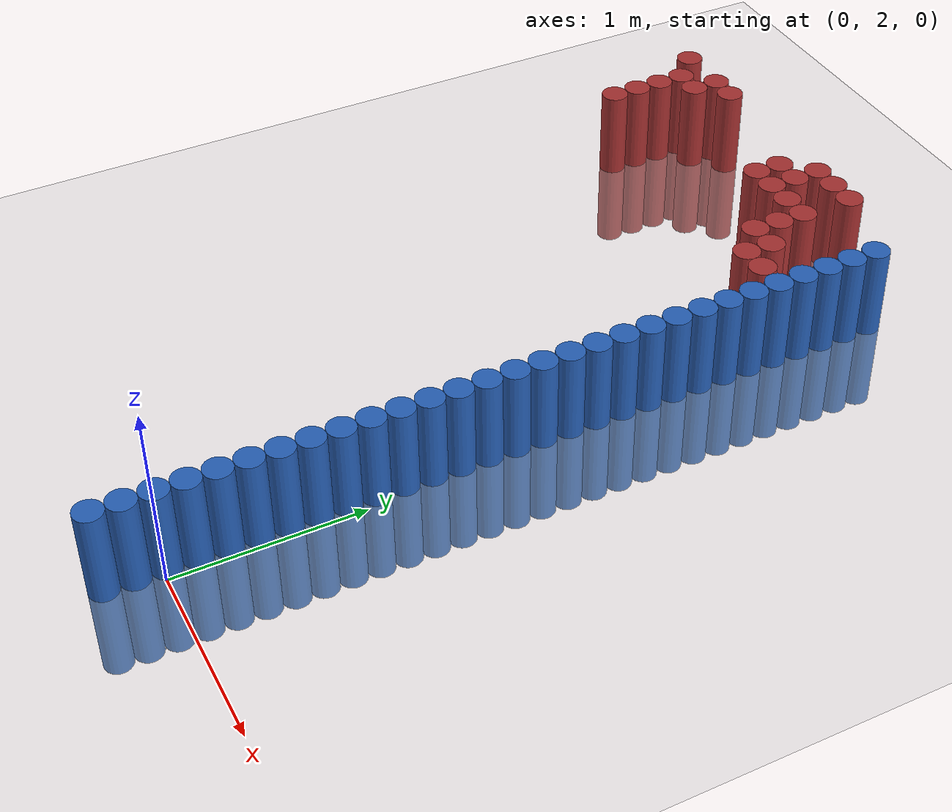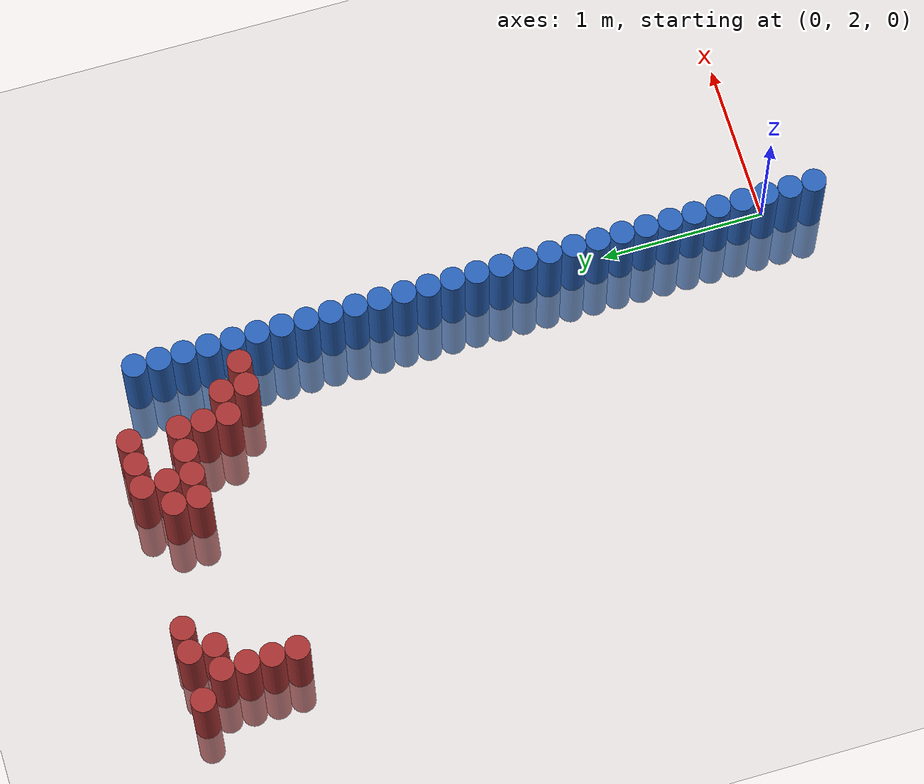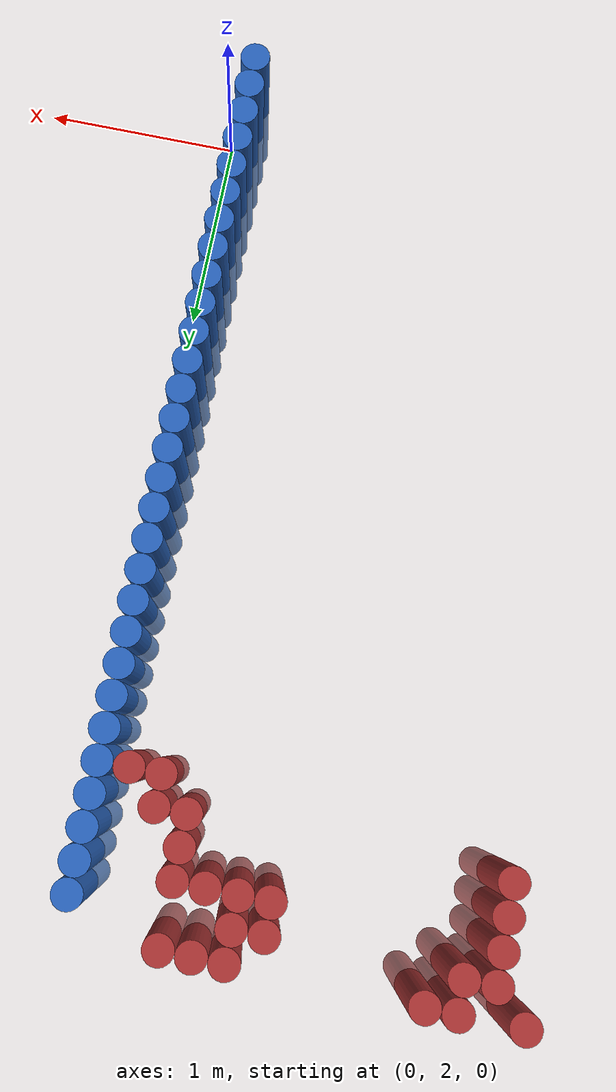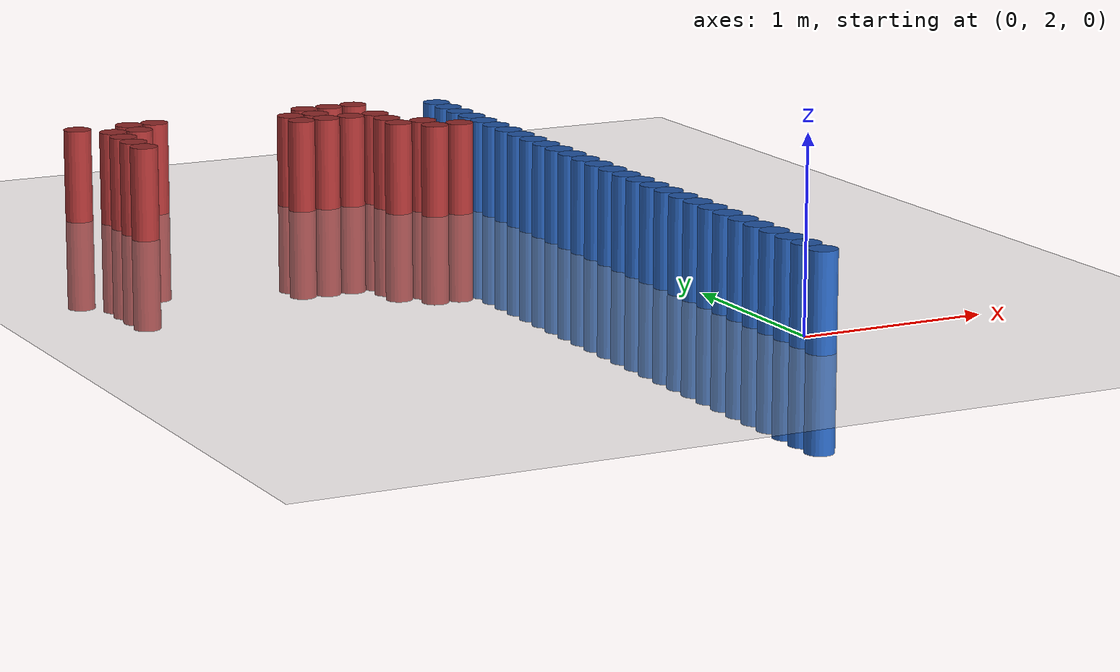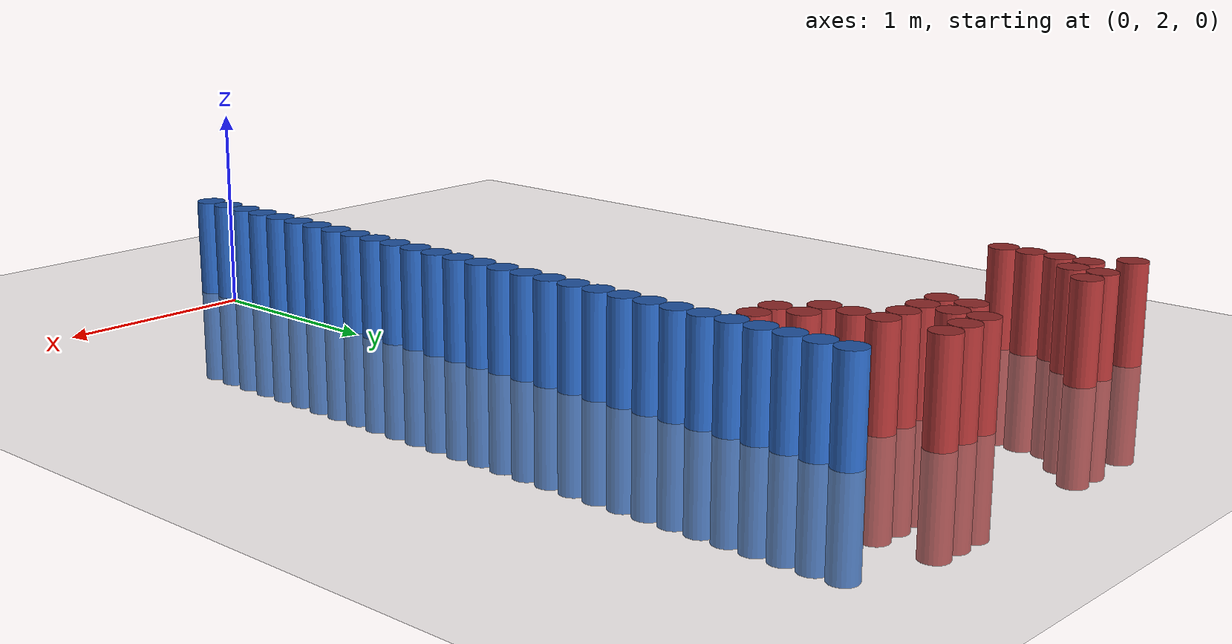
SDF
<sdf version="1.6">
 <world name="default">
  <model name="ground_plane">
   <static>1</static>
   <link name="link">
    <collision name="collision">
     <geometry><plane><normal>0 0 1</normal><size>100 100</size></plane></geometry>
     <surface><friction><ode><mu>100</mu><mu2>50</mu2></ode></friction></surface>
    </collision>
    <visual name="visual">
     <cast_shadows>0</cast_shadows>
     <geometry><plane><normal>0 0 1</normal><size>100 100</size></plane></geometry>
     <material>
      <script><uri>file://media/materials/scripts/gazebo.material</uri><name>Gazebo/Grey</name></script>
     </material>
    </visual>
   </link>
  </model>
  <model name="unit_cylinder_50">
   <static>1</static>
   <pose>-0.075000 1.725000 0.000000 0.000000 0.000000 0.000000</pose>
   <link name="link">
    <inertial>
     <mass>1</mass>
     <inertia><ixx>0.145833</ixx><ixy>0</ixy><ixz>0</ixz><iyy>0.145833</iyy><iyz>0</iyz><izz>0.125</izz></inertia>
    </inertial>
    <collision name="collision">
     <geometry><cylinder><radius>0.075000</radius><length>1</length></cylinder></geometry>
    </collision>
    <visual name="visual">
     <geometry><cylinder><radius>0.075000</radius><length>1</length></cylinder></geometry>
     <material>
      <ambient>0.152000 0.379000 0.720000 1</ambient>
      <diffuse>0.152000 0.379000 0.720000 1</diffuse>
     </material>
     <material>
      <script><name>Gazebo/Grey</name><uri>file://media/materials/scripts/gazebo.material</uri></script>
     </material>
    </visual>
   </link>
  </model>
  <model name="unit_cylinder_52">
   <static>1</static>
   <pose>-0.075000 1.875000 0.000000 0.000000 0.000000 0.000000</pose>
   <link name="link">
    <inertial>
     <mass>1</mass>
     <inertia><ixx>0.145833</ixx><ixy>0</ixy><ixz>0</ixz><iyy>0.145833</iyy><iyz>0</iyz><izz>0.125</izz></inertia>
    </inertial>
    <collision name="collision">
     <geometry><cylinder><radius>0.075000</radius><length>1</length></cylinder></geometry>
    </collision>
    <visual name="visual">
     <geometry><cylinder><radius>0.075000</radius><length>1</length></cylinder></geometry>
     <material>
      <ambient>0.152000 0.379000 0.720000 1</ambient>
      <diffuse>0.152000 0.379000 0.720000 1</diffuse>
     </material>
     <material>
      <script><name>Gazebo/Grey</name><uri>file://media/materials/scripts/gazebo.material</uri></script>
     </material>
    </visual>
   </link>
  </model>
  <model name="unit_cylinder_54">
   <static>1</static>
   <pose>-0.075000 2.025000 0.000000 0.000000 0.000000 0.000000</pose>
   <link name="link">
    <inertial>
     <mass>1</mass>
     <inertia><ixx>0.145833</ixx><ixy>0</ixy><ixz>0</ixz><iyy>0.145833</iyy><iyz>0</iyz><izz>0.125</izz></inertia>
    </inertial>
    <collision name="collision">
     <geometry><cylinder><radius>0.075000</radius><length>1</length></cylinder></geometry>
    </collision>
    <visual name="visual">
     <geometry><cylinder><radius>0.075000</radius><length>1</length></cylinder></geometry>
     <material>
      <ambient>0.152000 0.379000 0.720000 1</ambient>
      <diffuse>0.152000 0.379000 0.720000 1</diffuse>
     </material>
     <material>
      <script><name>Gazebo/Grey</name><uri>file://media/materials/scripts/gazebo.material</uri></script>
     </material>
    </visual>
   </link>
  </model>
  <model name="unit_cylinder_56">
   <static>1</static>
   <pose>-0.075000 2.175000 0.000000 0.000000 0.000000 0.000000</pose>
   <link name="link">
    <inertial>
     <mass>1</mass>
     <inertia><ixx>0.145833</ixx><ixy>0</ixy><ixz>0</ixz><iyy>0.145833</iyy><iyz>0</iyz><izz>0.125</izz></inertia>
    </inertial>
    <collision name="collision">
     <geometry><cylinder><radius>0.075000</radius><length>1</length></cylinder></geometry>
    </collision>
    <visual name="visual">
     <geometry><cylinder><radius>0.075000</radius><length>1</length></cylinder></geometry>
     <material>
      <ambient>0.152000 0.379000 0.720000 1</ambient>
      <diffuse>0.152000 0.379000 0.720000 1</diffuse>
     </material>
     <material>
      <script><name>Gazebo/Grey</name><uri>file://media/materials/scripts/gazebo.material</uri></script>
     </material>
    </visual>
   </link>
  </model>
  <model name="unit_cylinder_58">
   <static>1</static>
   <pose>-0.075000 2.325000 0.000000 0.000000 0.000000 0.000000</pose>
   <link name="link">
    <inertial>
     <mass>1</mass>
     <inertia><ixx>0.145833</ixx><ixy>0</ixy><ixz>0</ixz><iyy>0.145833</iyy><iyz>0</iyz><izz>0.125</izz></inertia>
    </inertial>
    <collision name="collision">
     <geometry><cylinder><radius>0.075000</radius><length>1</length></cylinder></geometry>
    </collision>
    <visual name="visual">
     <geometry><cylinder><radius>0.075000</radius><length>1</length></cylinder></geometry>
     <material>
      <ambient>0.152000 0.379000 0.720000 1</ambient>
      <diffuse>0.152000 0.379000 0.720000 1</diffuse>
     </material>
     <material>
      <script><name>Gazebo/Grey</name><uri>file://media/materials/scripts/gazebo.material</uri></script>
     </material>
    </visual>
   </link>
  </model>
  <model name="unit_cylinder_60">
   <static>1</static>
   <pose>-0.075000 2.475000 0.000000 0.000000 0.000000 0.000000</pose>
   <link name="link">
    <inertial>
     <mass>1</mass>
     <inertia><ixx>0.145833</ixx><ixy>0</ixy><ixz>0</ixz><iyy>0.145833</iyy><iyz>0</iyz><izz>0.125</izz></inertia>
    </inertial>
    <collision name="collision">
     <geometry><cylinder><radius>0.075000</radius><length>1</length></cylinder></geometry>
    </collision>
    <visual name="visual">
     <geometry><cylinder><radius>0.075000</radius><length>1</length></cylinder></geometry>
     <material>
      <ambient>0.152000 0.379000 0.720000 1</ambient>
      <diffuse>0.152000 0.379000 0.720000 1</diffuse>
     </material>
     <material>
      <script><name>Gazebo/Grey</name><uri>file://media/materials/scripts/gazebo.material</uri></script>
     </material>
    </visual>
   </link>
  </model>
  <model name="unit_cylinder_62">
   <static>1</static>
   <pose>-0.075000 2.625000 0.000000 0.000000 0.000000 0.000000</pose>
   <link name="link">
    <inertial>
     <mass>1</mass>
     <inertia><ixx>0.145833</ixx><ixy>0</ixy><ixz>0</ixz><iyy>0.145833</iyy><iyz>0</iyz><izz>0.125</izz></inertia>
    </inertial>
    <collision name="collision">
     <geometry><cylinder><radius>0.075000</radius><length>1</length></cylinder></geometry>
    </collision>
    <visual name="visual">
     <geometry><cylinder><radius>0.075000</radius><length>1</length></cylinder></geometry>
     <material>
      <ambient>0.152000 0.379000 0.720000 1</ambient>
      <diffuse>0.152000 0.379000 0.720000 1</diffuse>
     </material>
     <material>
      <script><name>Gazebo/Grey</name><uri>file://media/materials/scripts/gazebo.material</uri></script>
     </material>
    </visual>
   </link>
  </model>
  <model name="unit_cylinder_64">
   <static>1</static>
   <pose>-0.075000 2.775000 0.000000 0.000000 0.000000 0.000000</pose>
   <link name="link">
    <inertial>
     <mass>1</mass>
     <inertia><ixx>0.145833</ixx><ixy>0</ixy><ixz>0</ixz><iyy>0.145833</iyy><iyz>0</iyz><izz>0.125</izz></inertia>
    </inertial>
    <collision name="collision">
     <geometry><cylinder><radius>0.075000</radius><length>1</length></cylinder></geometry>
    </collision>
    <visual name="visual">
     <geometry><cylinder><radius>0.075000</radius><length>1</length></cylinder></geometry>
     <material>
      <ambient>0.152000 0.379000 0.720000 1</ambient>
      <diffuse>0.152000 0.379000 0.720000 1</diffuse>
     </material>
     <material>
      <script><name>Gazebo/Grey</name><uri>file://media/materials/scripts/gazebo.material</uri></script>
     </material>
    </visual>
   </link>
  </model>
  <model name="unit_cylinder_66">
   <static>1</static>
   <pose>-0.075000 2.925000 0.000000 0.000000 0.000000 0.000000</pose>
   <link name="link">
    <inertial>
     <mass>1</mass>
     <inertia><ixx>0.145833</ixx><ixy>0</ixy><ixz>0</ixz><iyy>0.145833</iyy><iyz>0</iyz><izz>0.125</izz></inertia>
    </inertial>
    <collision name="collision">
     <geometry><cylinder><radius>0.075000</radius><length>1</length></cylinder></geometry>
    </collision>
    <visual name="visual">
     <geometry><cylinder><radius>0.075000</radius><length>1</length></cylinder></geometry>
     <material>
      <ambient>0.152000 0.379000 0.720000 1</ambient>
      <diffuse>0.152000 0.379000 0.720000 1</diffuse>
     </material>
     <material>
      <script><name>Gazebo/Grey</name><uri>file://media/materials/scripts/gazebo.material</uri></script>
     </material>
    </visual>
   </link>
  </model>
  <model name="unit_cylinder_68">
   <static>1</static>
   <pose>-0.075000 3.075000 0.000000 0.000000 0.000000 0.000000</pose>
   <link name="link">
    <inertial>
     <mass>1</mass>
     <inertia><ixx>0.145833</ixx><ixy>0</ixy><ixz>0</ixz><iyy>0.145833</iyy><iyz>0</iyz><izz>0.125</izz></inertia>
    </inertial>
    <collision name="collision">
     <geometry><cylinder><radius>0.075000</radius><length>1</length></cylinder></geometry>
    </collision>
    <visual name="visual">
     <geometry><cylinder><radius>0.075000</radius><length>1</length></cylinder></geometry>
     <material>
      <ambient>0.152000 0.379000 0.720000 1</ambient>
      <diffuse>0.152000 0.379000 0.720000 1</diffuse>
     </material>
     <material>
      <script><name>Gazebo/Grey</name><uri>file://media/materials/scripts/gazebo.material</uri></script>
     </material>
    </visual>
   </link>
  </model>
  <model name="unit_cylinder_70">
   <static>1</static>
   <pose>-0.075000 3.225000 0.000000 0.000000 0.000000 0.000000</pose>
   <link name="link">
    <inertial>
     <mass>1</mass>
     <inertia><ixx>0.145833</ixx><ixy>0</ixy><ixz>0</ixz><iyy>0.145833</iyy><iyz>0</iyz><izz>0.125</izz></inertia>
    </inertial>
    <collision name="collision">
     <geometry><cylinder><radius>0.075000</radius><length>1</length></cylinder></geometry>
    </collision>
    <visual name="visual">
     <geometry><cylinder><radius>0.075000</radius><length>1</length></cylinder></geometry>
     <material>
      <ambient>0.152000 0.379000 0.720000 1</ambient>
      <diffuse>0.152000 0.379000 0.720000 1</diffuse>
     </material>
     <material>
      <script><name>Gazebo/Grey</name><uri>file://media/materials/scripts/gazebo.material</uri></script>
     </material>
    </visual>
   </link>
  </model>
  <model name="unit_cylinder_72">
   <static>1</static>
   <pose>-0.075000 3.375000 0.000000 0.000000 0.000000 0.000000</pose>
   <link name="link">
    <inertial>
     <mass>1</mass>
     <inertia><ixx>0.145833</ixx><ixy>0</ixy><ixz>0</ixz><iyy>0.145833</iyy><iyz>0</iyz><izz>0.125</izz></inertia>
    </inertial>
    <collision name="collision">
     <geometry><cylinder><radius>0.075000</radius><length>1</length></cylinder></geometry>
    </collision>
    <visual name="visual">
     <geometry><cylinder><radius>0.075000</radius><length>1</length></cylinder></geometry>
     <material>
      <ambient>0.152000 0.379000 0.720000 1</ambient>
      <diffuse>0.152000 0.379000 0.720000 1</diffuse>
     </material>
     <material>
      <script><name>Gazebo/Grey</name><uri>file://media/materials/scripts/gazebo.material</uri></script>
     </material>
    </visual>
   </link>
  </model>
  <model name="unit_cylinder_74">
   <static>1</static>
   <pose>-0.075000 3.525000 0.000000 0.000000 0.000000 0.000000</pose>
   <link name="link">
    <inertial>
     <mass>1</mass>
     <inertia><ixx>0.145833</ixx><ixy>0</ixy><ixz>0</ixz><iyy>0.145833</iyy><iyz>0</iyz><izz>0.125</izz></inertia>
    </inertial>
    <collision name="collision">
     <geometry><cylinder><radius>0.075000</radius><length>1</length></cylinder></geometry>
    </collision>
    <visual name="visual">
     <geometry><cylinder><radius>0.075000</radius><length>1</length></cylinder></geometry>
     <material>
      <ambient>0.152000 0.379000 0.720000 1</ambient>
      <diffuse>0.152000 0.379000 0.720000 1</diffuse>
     </material>
     <material>
      <script><name>Gazebo/Grey</name><uri>file://media/materials/scripts/gazebo.material</uri></script>
     </material>
    </visual>
   </link>
  </model>
  <model name="unit_cylinder_76">
   <static>1</static>
   <pose>-0.075000 3.675000 0.000000 0.000000 0.000000 0.000000</pose>
   <link name="link">
    <inertial>
     <mass>1</mass>
     <inertia><ixx>0.145833</ixx><ixy>0</ixy><ixz>0</ixz><iyy>0.145833</iyy><iyz>0</iyz><izz>0.125</izz></inertia>
    </inertial>
    <collision name="collision">
     <geometry><cylinder><radius>0.075000</radius><length>1</length></cylinder></geometry>
    </collision>
    <visual name="visual">
     <geometry><cylinder><radius>0.075000</radius><length>1</length></cylinder></geometry>
     <material>
      <ambient>0.152000 0.379000 0.720000 1</ambient>
      <diffuse>0.152000 0.379000 0.720000 1</diffuse>
     </material>
     <material>
      <script><name>Gazebo/Grey</name><uri>file://media/materials/scripts/gazebo.material</uri></script>
     </material>
    </visual>
   </link>
  </model>
  <model name="unit_cylinder_78">
   <static>1</static>
   <pose>-0.075000 3.825000 0.000000 0.000000 0.000000 0.000000</pose>
   <link name="link">
    <inertial>
     <mass>1</mass>
     <inertia><ixx>0.145833</ixx><ixy>0</ixy><ixz>0</ixz><iyy>0.145833</iyy><iyz>0</iyz><izz>0.125</izz></inertia>
    </inertial>
    <collision name="collision">
     <geometry><cylinder><radius>0.075000</radius><length>1</length></cylinder></geometry>
    </collision>
    <visual name="visual">
     <geometry><cylinder><radius>0.075000</radius><length>1</length></cylinder></geometry>
     <material>
      <ambient>0.152000 0.379000 0.720000 1</ambient>
      <diffuse>0.152000 0.379000 0.720000 1</diffuse>
     </material>
     <material>
      <script><name>Gazebo/Grey</name><uri>file://media/materials/scripts/gazebo.material</uri></script>
     </material>
    </visual>
   </link>
  </model>
  <model name="unit_cylinder_80">
   <static>1</static>
   <pose>-0.075000 3.975000 0.000000 0.000000 0.000000 0.000000</pose>
   <link name="link">
    <inertial>
     <mass>1</mass>
     <inertia><ixx>0.145833</ixx><ixy>0</ixy><ixz>0</ixz><iyy>0.145833</iyy><iyz>0</iyz><izz>0.125</izz></inertia>
    </inertial>
    <collision name="collision">
     <geometry><cylinder><radius>0.075000</radius><length>1</length></cylinder></geometry>
    </collision>
    <visual name="visual">
     <geometry><cylinder><radius>0.075000</radius><length>1</length></cylinder></geometry>
     <material>
      <ambient>0.152000 0.379000 0.720000 1</ambient>
      <diffuse>0.152000 0.379000 0.720000 1</diffuse>
     </material>
     <material>
      <script><name>Gazebo/Grey</name><uri>file://media/materials/scripts/gazebo.material</uri></script>
     </material>
    </visual>
   </link>
  </model>
  <model name="unit_cylinder_82">
   <static>1</static>
   <pose>-0.075000 4.125000 0.000000 0.000000 0.000000 0.000000</pose>
   <link name="link">
    <inertial>
     <mass>1</mass>
     <inertia><ixx>0.145833</ixx><ixy>0</ixy><ixz>0</ixz><iyy>0.145833</iyy><iyz>0</iyz><izz>0.125</izz></inertia>
    </inertial>
    <collision name="collision">
     <geometry><cylinder><radius>0.075000</radius><length>1</length></cylinder></geometry>
    </collision>
    <visual name="visual">
     <geometry><cylinder><radius>0.075000</radius><length>1</length></cylinder></geometry>
     <material>
      <ambient>0.152000 0.379000 0.720000 1</ambient>
      <diffuse>0.152000 0.379000 0.720000 1</diffuse>
     </material>
     <material>
      <script><name>Gazebo/Grey</name><uri>file://media/materials/scripts/gazebo.material</uri></script>
     </material>
    </visual>
   </link>
  </model>
  <model name="unit_cylinder_84">
   <static>1</static>
   <pose>-0.075000 4.275000 0.000000 0.000000 0.000000 0.000000</pose>
   <link name="link">
    <inertial>
     <mass>1</mass>
     <inertia><ixx>0.145833</ixx><ixy>0</ixy><ixz>0</ixz><iyy>0.145833</iyy><iyz>0</iyz><izz>0.125</izz></inertia>
    </inertial>
    <collision name="collision">
     <geometry><cylinder><radius>0.075000</radius><length>1</length></cylinder></geometry>
    </collision>
    <visual name="visual">
     <geometry><cylinder><radius>0.075000</radius><length>1</length></cylinder></geometry>
     <material>
      <ambient>0.152000 0.379000 0.720000 1</ambient>
      <diffuse>0.152000 0.379000 0.720000 1</diffuse>
     </material>
     <material>
      <script><name>Gazebo/Grey</name><uri>file://media/materials/scripts/gazebo.material</uri></script>
     </material>
    </visual>
   </link>
  </model>
  <model name="unit_cylinder_86">
   <static>1</static>
   <pose>-0.075000 4.425000 0.000000 0.000000 0.000000 0.000000</pose>
   <link name="link">
    <inertial>
     <mass>1</mass>
     <inertia><ixx>0.145833</ixx><ixy>0</ixy><ixz>0</ixz><iyy>0.145833</iyy><iyz>0</iyz><izz>0.125</izz></inertia>
    </inertial>
    <collision name="collision">
     <geometry><cylinder><radius>0.075000</radius><length>1</length></cylinder></geometry>
    </collision>
    <visual name="visual">
     <geometry><cylinder><radius>0.075000</radius><length>1</length></cylinder></geometry>
     <material>
      <ambient>0.152000 0.379000 0.720000 1</ambient>
      <diffuse>0.152000 0.379000 0.720000 1</diffuse>
     </material>
     <material>
      <script><name>Gazebo/Grey</name><uri>file://media/materials/scripts/gazebo.material</uri></script>
     </material>
    </visual>
   </link>
  </model>
  <model name="unit_cylinder_88">
   <static>1</static>
   <pose>-0.075000 4.575000 0.000000 0.000000 0.000000 0.000000</pose>
   <link name="link">
    <inertial>
     <mass>1</mass>
     <inertia><ixx>0.145833</ixx><ixy>0</ixy><ixz>0</ixz><iyy>0.145833</iyy><iyz>0</iyz><izz>0.125</izz></inertia>
    </inertial>
    <collision name="collision">
     <geometry><cylinder><radius>0.075000</radius><length>1</length></cylinder></geometry>
    </collision>
    <visual name="visual">
     <geometry><cylinder><radius>0.075000</radius><length>1</length></cylinder></geometry>
     <material>
      <ambient>0.152000 0.379000 0.720000 1</ambient>
      <diffuse>0.152000 0.379000 0.720000 1</diffuse>
     </material>
     <material>
      <script><name>Gazebo/Grey</name><uri>file://media/materials/scripts/gazebo.material</uri></script>
     </material>
    </visual>
   </link>
  </model>
  <model name="unit_cylinder_90">
   <static>1</static>
   <pose>-0.075000 4.725000 0.000000 0.000000 0.000000 0.000000</pose>
   <link name="link">
    <inertial>
     <mass>1</mass>
     <inertia><ixx>0.145833</ixx><ixy>0</ixy><ixz>0</ixz><iyy>0.145833</iyy><iyz>0</iyz><izz>0.125</izz></inertia>
    </inertial>
    <collision name="collision">
     <geometry><cylinder><radius>0.075000</radius><length>1</length></cylinder></geometry>
    </collision>
    <visual name="visual">
     <geometry><cylinder><radius>0.075000</radius><length>1</length></cylinder></geometry>
     <material>
      <ambient>0.152000 0.379000 0.720000 1</ambient>
      <diffuse>0.152000 0.379000 0.720000 1</diffuse>
     </material>
     <material>
      <script><name>Gazebo/Grey</name><uri>file://media/materials/scripts/gazebo.material</uri></script>
     </material>
    </visual>
   </link>
  </model>
  <model name="unit_cylinder_92">
   <static>1</static>
   <pose>-0.075000 4.875000 0.000000 0.000000 0.000000 0.000000</pose>
   <link name="link">
    <inertial>
     <mass>1</mass>
     <inertia><ixx>0.145833</ixx><ixy>0</ixy><ixz>0</ixz><iyy>0.145833</iyy><iyz>0</iyz><izz>0.125</izz></inertia>
    </inertial>
    <collision name="collision">
     <geometry><cylinder><radius>0.075000</radius><length>1</length></cylinder></geometry>
    </collision>
    <visual name="visual">
     <geometry><cylinder><radius>0.075000</radius><length>1</length></cylinder></geometry>
     <material>
      <ambient>0.152000 0.379000 0.720000 1</ambient>
      <diffuse>0.152000 0.379000 0.720000 1</diffuse>
     </material>
     <material>
      <script><name>Gazebo/Grey</name><uri>file://media/materials/scripts/gazebo.material</uri></script>
     </material>
    </visual>
   </link>
  </model>
  <model name="unit_cylinder_94">
   <static>1</static>
   <pose>-0.075000 5.025000 0.000000 0.000000 0.000000 0.000000</pose>
   <link name="link">
    <inertial>
     <mass>1</mass>
     <inertia><ixx>0.145833</ixx><ixy>0</ixy><ixz>0</ixz><iyy>0.145833</iyy><iyz>0</iyz><izz>0.125</izz></inertia>
    </inertial>
    <collision name="collision">
     <geometry><cylinder><radius>0.075000</radius><length>1</length></cylinder></geometry>
    </collision>
    <visual name="visual">
     <geometry><cylinder><radius>0.075000</radius><length>1</length></cylinder></geometry>
     <material>
      <ambient>0.152000 0.379000 0.720000 1</ambient>
      <diffuse>0.152000 0.379000 0.720000 1</diffuse>
     </material>
     <material>
      <script><name>Gazebo/Grey</name><uri>file://media/materials/scripts/gazebo.material</uri></script>
     </material>
    </visual>
   </link>
  </model>
  <model name="unit_cylinder_218">
   <static>1</static>
   <pose>-2.175000 6.075000 0.000000 0.000000 0.000000 0.000000</pose>
   <link name="link">
    <inertial>
     <mass>1</mass>
     <inertia><ixx>0.145833</ixx><ixy>0</ixy><ixz>0</ixz><iyy>0.145833</iyy><iyz>0</iyz><izz>0.125</izz></inertia>
    </inertial>
    <collision name="collision">
     <geometry><cylinder><radius>0.075000</radius><length>1</length></cylinder></geometry>
    </collision>
    <visual name="visual">
     <geometry><cylinder><radius>0.075000</radius><length>1</length></cylinder></geometry>
     <material>
      <ambient>0.648000 0.192000 0.192000 1</ambient>
      <diffuse>0.648000 0.192000 0.192000 1</diffuse>
     </material>
     <material>
      <script><name>Gazebo/Grey</name><uri>file://media/materials/scripts/gazebo.material</uri></script>
     </material>
    </visual>
   </link>
  </model>
  <model name="unit_cylinder_220">
   <static>1</static>
   <pose>-2.025000 5.475000 0.000000 0.000000 0.000000 0.000000</pose>
   <link name="link">
    <inertial>
     <mass>1</mass>
     <inertia><ixx>0.145833</ixx><ixy>0</ixy><ixz>0</ixz><iyy>0.145833</iyy><iyz>0</iyz><izz>0.125</izz></inertia>
    </inertial>
    <collision name="collision">
     <geometry><cylinder><radius>0.075000</radius><length>1</length></cylinder></geometry>
    </collision>
    <visual name="visual">
     <geometry><cylinder><radius>0.075000</radius><length>1</length></cylinder></geometry>
     <material>
      <ambient>0.648000 0.192000 0.192000 1</ambient>
      <diffuse>0.648000 0.192000 0.192000 1</diffuse>
     </material>
     <material>
      <script><name>Gazebo/Grey</name><uri>file://media/materials/scripts/gazebo.material</uri></script>
     </material>
    </visual>
   </link>
  </model>
  <model name="unit_cylinder_221">
   <static>1</static>
   <pose>-2.025000 5.625000 0.000000 0.000000 0.000000 0.000000</pose>
   <link name="link">
    <inertial>
     <mass>1</mass>
     <inertia><ixx>0.145833</ixx><ixy>0</ixy><ixz>0</ixz><iyy>0.145833</iyy><iyz>0</iyz><izz>0.125</izz></inertia>
    </inertial>
    <collision name="collision">
     <geometry><cylinder><radius>0.075000</radius><length>1</length></cylinder></geometry>
    </collision>
    <visual name="visual">
     <geometry><cylinder><radius>0.075000</radius><length>1</length></cylinder></geometry>
     <material>
      <ambient>0.648000 0.192000 0.192000 1</ambient>
      <diffuse>0.648000 0.192000 0.192000 1</diffuse>
     </material>
     <material>
      <script><name>Gazebo/Grey</name><uri>file://media/materials/scripts/gazebo.material</uri></script>
     </material>
    </visual>
   </link>
  </model>
  <model name="unit_cylinder_222">
   <static>1</static>
   <pose>-2.025000 5.775000 0.000000 0.000000 0.000000 0.000000</pose>
   <link name="link">
    <inertial>
     <mass>1</mass>
     <inertia><ixx>0.145833</ixx><ixy>0</ixy><ixz>0</ixz><iyy>0.145833</iyy><iyz>0</iyz><izz>0.125</izz></inertia>
    </inertial>
    <collision name="collision">
     <geometry><cylinder><radius>0.075000</radius><length>1</length></cylinder></geometry>
    </collision>
    <visual name="visual">
     <geometry><cylinder><radius>0.075000</radius><length>1</length></cylinder></geometry>
     <material>
      <ambient>0.648000 0.192000 0.192000 1</ambient>
      <diffuse>0.648000 0.192000 0.192000 1</diffuse>
     </material>
     <material>
      <script><name>Gazebo/Grey</name><uri>file://media/materials/scripts/gazebo.material</uri></script>
     </material>
    </visual>
   </link>
  </model>
  <model name="unit_cylinder_223">
   <static>1</static>
   <pose>-2.025000 5.925000 0.000000 0.000000 0.000000 0.000000</pose>
   <link name="link">
    <inertial>
     <mass>1</mass>
     <inertia><ixx>0.145833</ixx><ixy>0</ixy><ixz>0</ixz><iyy>0.145833</iyy><iyz>0</iyz><izz>0.125</izz></inertia>
    </inertial>
    <collision name="collision">
     <geometry><cylinder><radius>0.075000</radius><length>1</length></cylinder></geometry>
    </collision>
    <visual name="visual">
     <geometry><cylinder><radius>0.075000</radius><length>1</length></cylinder></geometry>
     <material>
      <ambient>0.648000 0.192000 0.192000 1</ambient>
      <diffuse>0.648000 0.192000 0.192000 1</diffuse>
     </material>
     <material>
      <script><name>Gazebo/Grey</name><uri>file://media/materials/scripts/gazebo.material</uri></script>
     </material>
    </visual>
   </link>
  </model>
  <model name="unit_cylinder_226">
   <static>1</static>
   <pose>-1.875000 5.925000 0.000000 0.000000 0.000000 0.000000</pose>
   <link name="link">
    <inertial>
     <mass>1</mass>
     <inertia><ixx>0.145833</ixx><ixy>0</ixy><ixz>0</ixz><iyy>0.145833</iyy><iyz>0</iyz><izz>0.125</izz></inertia>
    </inertial>
    <collision name="collision">
     <geometry><cylinder><radius>0.075000</radius><length>1</length></cylinder></geometry>
    </collision>
    <visual name="visual">
     <geometry><cylinder><radius>0.075000</radius><length>1</length></cylinder></geometry>
     <material>
      <ambient>0.648000 0.192000 0.192000 1</ambient>
      <diffuse>0.648000 0.192000 0.192000 1</diffuse>
     </material>
     <material>
      <script><name>Gazebo/Grey</name><uri>file://media/materials/scripts/gazebo.material</uri></script>
     </material>
    </visual>
   </link>
  </model>
  <model name="unit_cylinder_227">
   <static>1</static>
   <pose>-1.875000 6.075000 0.000000 0.000000 0.000000 0.000000</pose>
   <link name="link">
    <inertial>
     <mass>1</mass>
     <inertia><ixx>0.145833</ixx><ixy>0</ixy><ixz>0</ixz><iyy>0.145833</iyy><iyz>0</iyz><izz>0.125</izz></inertia>
    </inertial>
    <collision name="collision">
     <geometry><cylinder><radius>0.075000</radius><length>1</length></cylinder></geometry>
    </collision>
    <visual name="visual">
     <geometry><cylinder><radius>0.075000</radius><length>1</length></cylinder></geometry>
     <material>
      <ambient>0.648000 0.192000 0.192000 1</ambient>
      <diffuse>0.648000 0.192000 0.192000 1</diffuse>
     </material>
     <material>
      <script><name>Gazebo/Grey</name><uri>file://media/materials/scripts/gazebo.material</uri></script>
     </material>
    </visual>
   </link>
  </model>
  <model name="unit_cylinder_231">
   <static>1</static>
   <pose>-1.725000 6.075000 0.000000 0.000000 0.000000 0.000000</pose>
   <link name="link">
    <inertial>
     <mass>1</mass>
     <inertia><ixx>0.145833</ixx><ixy>0</ixy><ixz>0</ixz><iyy>0.145833</iyy><iyz>0</iyz><izz>0.125</izz></inertia>
    </inertial>
    <collision name="collision">
     <geometry><cylinder><radius>0.075000</radius><length>1</length></cylinder></geometry>
    </collision>
    <visual name="visual">
     <geometry><cylinder><radius>0.075000</radius><length>1</length></cylinder></geometry>
     <material>
      <ambient>0.648000 0.192000 0.192000 1</ambient>
      <diffuse>0.648000 0.192000 0.192000 1</diffuse>
     </material>
     <material>
      <script><name>Gazebo/Grey</name><uri>file://media/materials/scripts/gazebo.material</uri></script>
     </material>
    </visual>
   </link>
  </model>
  <model name="unit_cylinder_257">
   <static>1</static>
   <pose>-0.975000 5.775000 0.000000 0.000000 0.000000 0.000000</pose>
   <link name="link">
    <inertial>
     <mass>1</mass>
     <inertia><ixx>0.145833</ixx><ixy>0</ixy><ixz>0</ixz><iyy>0.145833</iyy><iyz>0</iyz><izz>0.125</izz></inertia>
    </inertial>
    <collision name="collision">
     <geometry><cylinder><radius>0.075000</radius><length>1</length></cylinder></geometry>
    </collision>
    <visual name="visual">
     <geometry><cylinder><radius>0.075000</radius><length>1</length></cylinder></geometry>
     <material>
      <ambient>0.648000 0.192000 0.192000 1</ambient>
      <diffuse>0.648000 0.192000 0.192000 1</diffuse>
     </material>
     <material>
      <script><name>Gazebo/Grey</name><uri>file://media/materials/scripts/gazebo.material</uri></script>
     </material>
    </visual>
   </link>
  </model>
  <model name="unit_cylinder_258">
   <static>1</static>
   <pose>-0.975000 5.925000 0.000000 0.000000 0.000000 0.000000</pose>
   <link name="link">
    <inertial>
     <mass>1</mass>
     <inertia><ixx>0.145833</ixx><ixy>0</ixy><ixz>0</ixz><iyy>0.145833</iyy><iyz>0</iyz><izz>0.125</izz></inertia>
    </inertial>
    <collision name="collision">
     <geometry><cylinder><radius>0.075000</radius><length>1</length></cylinder></geometry>
    </collision>
    <visual name="visual">
     <geometry><cylinder><radius>0.075000</radius><length>1</length></cylinder></geometry>
     <material>
      <ambient>0.648000 0.192000 0.192000 1</ambient>
      <diffuse>0.648000 0.192000 0.192000 1</diffuse>
     </material>
     <material>
      <script><name>Gazebo/Grey</name><uri>file://media/materials/scripts/gazebo.material</uri></script>
     </material>
    </visual>
   </link>
  </model>
  <model name="unit_cylinder_263">
   <static>1</static>
   <pose>-0.825000 5.775000 0.000000 0.000000 0.000000 0.000000</pose>
   <link name="link">
    <inertial>
     <mass>1</mass>
     <inertia><ixx>0.145833</ixx><ixy>0</ixy><ixz>0</ixz><iyy>0.145833</iyy><iyz>0</iyz><izz>0.125</izz></inertia>
    </inertial>
    <collision name="collision">
     <geometry><cylinder><radius>0.075000</radius><length>1</length></cylinder></geometry>
    </collision>
    <visual name="visual">
     <geometry><cylinder><radius>0.075000</radius><length>1</length></cylinder></geometry>
     <material>
      <ambient>0.648000 0.192000 0.192000 1</ambient>
      <diffuse>0.648000 0.192000 0.192000 1</diffuse>
     </material>
     <material>
      <script><name>Gazebo/Grey</name><uri>file://media/materials/scripts/gazebo.material</uri></script>
     </material>
    </visual>
   </link>
  </model>
  <model name="unit_cylinder_264">
   <static>1</static>
   <pose>-0.825000 5.925000 0.000000 0.000000 0.000000 0.000000</pose>
   <link name="link">
    <inertial>
     <mass>1</mass>
     <inertia><ixx>0.145833</ixx><ixy>0</ixy><ixz>0</ixz><iyy>0.145833</iyy><iyz>0</iyz><izz>0.125</izz></inertia>
    </inertial>
    <collision name="collision">
     <geometry><cylinder><radius>0.075000</radius><length>1</length></cylinder></geometry>
    </collision>
    <visual name="visual">
     <geometry><cylinder><radius>0.075000</radius><length>1</length></cylinder></geometry>
     <material>
      <ambient>0.648000 0.192000 0.192000 1</ambient>
      <diffuse>0.648000 0.192000 0.192000 1</diffuse>
     </material>
     <material>
      <script><name>Gazebo/Grey</name><uri>file://media/materials/scripts/gazebo.material</uri></script>
     </material>
    </visual>
   </link>
  </model>
  <model name="unit_cylinder_265">
   <static>1</static>
   <pose>-0.825000 6.075000 0.000000 0.000000 0.000000 0.000000</pose>
   <link name="link">
    <inertial>
     <mass>1</mass>
     <inertia><ixx>0.145833</ixx><ixy>0</ixy><ixz>0</ixz><iyy>0.145833</iyy><iyz>0</iyz><izz>0.125</izz></inertia>
    </inertial>
    <collision name="collision">
     <geometry><cylinder><radius>0.075000</radius><length>1</length></cylinder></geometry>
    </collision>
    <visual name="visual">
     <geometry><cylinder><radius>0.075000</radius><length>1</length></cylinder></geometry>
     <material>
      <ambient>0.648000 0.192000 0.192000 1</ambient>
      <diffuse>0.648000 0.192000 0.192000 1</diffuse>
     </material>
     <material>
      <script><name>Gazebo/Grey</name><uri>file://media/materials/scripts/gazebo.material</uri></script>
     </material>
    </visual>
   </link>
  </model>
  <model name="unit_cylinder_275">
   <static>1</static>
   <pose>-0.675000 5.775000 0.000000 0.000000 0.000000 0.000000</pose>
   <link name="link">
    <inertial>
     <mass>1</mass>
     <inertia><ixx>0.145833</ixx><ixy>0</ixy><ixz>0</ixz><iyy>0.145833</iyy><iyz>0</iyz><izz>0.125</izz></inertia>
    </inertial>
    <collision name="collision">
     <geometry><cylinder><radius>0.075000</radius><length>1</length></cylinder></geometry>
    </collision>
    <visual name="visual">
     <geometry><cylinder><radius>0.075000</radius><length>1</length></cylinder></geometry>
     <material>
      <ambient>0.648000 0.192000 0.192000 1</ambient>
      <diffuse>0.648000 0.192000 0.192000 1</diffuse>
     </material>
     <material>
      <script><name>Gazebo/Grey</name><uri>file://media/materials/scripts/gazebo.material</uri></script>
     </material>
    </visual>
   </link>
  </model>
  <model name="unit_cylinder_276">
   <static>1</static>
   <pose>-0.675000 6.075000 0.000000 0.000000 0.000000 0.000000</pose>
   <link name="link">
    <inertial>
     <mass>1</mass>
     <inertia><ixx>0.145833</ixx><ixy>0</ixy><ixz>0</ixz><iyy>0.145833</iyy><iyz>0</iyz><izz>0.125</izz></inertia>
    </inertial>
    <collision name="collision">
     <geometry><cylinder><radius>0.075000</radius><length>1</length></cylinder></geometry>
    </collision>
    <visual name="visual">
     <geometry><cylinder><radius>0.075000</radius><length>1</length></cylinder></geometry>
     <material>
      <ambient>0.648000 0.192000 0.192000 1</ambient>
      <diffuse>0.648000 0.192000 0.192000 1</diffuse>
     </material>
     <material>
      <script><name>Gazebo/Grey</name><uri>file://media/materials/scripts/gazebo.material</uri></script>
     </material>
    </visual>
   </link>
  </model>
  <model name="unit_cylinder_287">
   <static>1</static>
   <pose>-0.525000 5.475000 0.000000 0.000000 0.000000 0.000000</pose>
   <link name="link">
    <inertial>
     <mass>1</mass>
     <inertia><ixx>0.145833</ixx><ixy>0</ixy><ixz>0</ixz><iyy>0.145833</iyy><iyz>0</iyz><izz>0.125</izz></inertia>
    </inertial>
    <collision name="collision">
     <geometry><cylinder><radius>0.075000</radius><length>1</length></cylinder></geometry>
    </collision>
    <visual name="visual">
     <geometry><cylinder><radius>0.075000</radius><length>1</length></cylinder></geometry>
     <material>
      <ambient>0.648000 0.192000 0.192000 1</ambient>
      <diffuse>0.648000 0.192000 0.192000 1</diffuse>
     </material>
     <material>
      <script><name>Gazebo/Grey</name><uri>file://media/materials/scripts/gazebo.material</uri></script>
     </material>
    </visual>
   </link>
  </model>
  <model name="unit_cylinder_288">
   <static>1</static>
   <pose>-0.525000 5.625000 0.000000 0.000000 0.000000 0.000000</pose>
   <link name="link">
    <inertial>
     <mass>1</mass>
     <inertia><ixx>0.145833</ixx><ixy>0</ixy><ixz>0</ixz><iyy>0.145833</iyy><iyz>0</iyz><izz>0.125</izz></inertia>
    </inertial>
    <collision name="collision">
     <geometry><cylinder><radius>0.075000</radius><length>1</length></cylinder></geometry>
    </collision>
    <visual name="visual">
     <geometry><cylinder><radius>0.075000</radius><length>1</length></cylinder></geometry>
     <material>
      <ambient>0.648000 0.192000 0.192000 1</ambient>
      <diffuse>0.648000 0.192000 0.192000 1</diffuse>
     </material>
     <material>
      <script><name>Gazebo/Grey</name><uri>file://media/materials/scripts/gazebo.material</uri></script>
     </material>
    </visual>
   </link>
  </model>
  <model name="unit_cylinder_289">
   <static>1</static>
   <pose>-0.525000 5.775000 0.000000 0.000000 0.000000 0.000000</pose>
   <link name="link">
    <inertial>
     <mass>1</mass>
     <inertia><ixx>0.145833</ixx><ixy>0</ixy><ixz>0</ixz><iyy>0.145833</iyy><iyz>0</iyz><izz>0.125</izz></inertia>
    </inertial>
    <collision name="collision">
     <geometry><cylinder><radius>0.075000</radius><length>1</length></cylinder></geometry>
    </collision>
    <visual name="visual">
     <geometry><cylinder><radius>0.075000</radius><length>1</length></cylinder></geometry>
     <material>
      <ambient>0.648000 0.192000 0.192000 1</ambient>
      <diffuse>0.648000 0.192000 0.192000 1</diffuse>
     </material>
     <material>
      <script><name>Gazebo/Grey</name><uri>file://media/materials/scripts/gazebo.material</uri></script>
     </material>
    </visual>
   </link>
  </model>
  <model name="unit_cylinder_290">
   <static>1</static>
   <pose>-0.525000 6.075000 0.000000 0.000000 0.000000 0.000000</pose>
   <link name="link">
    <inertial>
     <mass>1</mass>
     <inertia><ixx>0.145833</ixx><ixy>0</ixy><ixz>0</ixz><iyy>0.145833</iyy><iyz>0</iyz><izz>0.125</izz></inertia>
    </inertial>
    <collision name="collision">
     <geometry><cylinder><radius>0.075000</radius><length>1</length></cylinder></geometry>
    </collision>
    <visual name="visual">
     <geometry><cylinder><radius>0.075000</radius><length>1</length></cylinder></geometry>
     <material>
      <ambient>0.648000 0.192000 0.192000 1</ambient>
      <diffuse>0.648000 0.192000 0.192000 1</diffuse>
     </material>
     <material>
      <script><name>Gazebo/Grey</name><uri>file://media/materials/scripts/gazebo.material</uri></script>
     </material>
    </visual>
   </link>
  </model>
  <model name="unit_cylinder_299">
   <static>1</static>
   <pose>-0.375000 5.325000 0.000000 0.000000 0.000000 0.000000</pose>
   <link name="link">
    <inertial>
     <mass>1</mass>
     <inertia><ixx>0.145833</ixx><ixy>0</ixy><ixz>0</ixz><iyy>0.145833</iyy><iyz>0</iyz><izz>0.125</izz></inertia>
    </inertial>
    <collision name="collision">
     <geometry><cylinder><radius>0.075000</radius><length>1</length></cylinder></geometry>
    </collision>
    <visual name="visual">
     <geometry><cylinder><radius>0.075000</radius><length>1</length></cylinder></geometry>
     <material>
      <ambient>0.648000 0.192000 0.192000 1</ambient>
      <diffuse>0.648000 0.192000 0.192000 1</diffuse>
     </material>
     <material>
      <script><name>Gazebo/Grey</name><uri>file://media/materials/scripts/gazebo.material</uri></script>
     </material>
    </visual>
   </link>
  </model>
  <model name="unit_cylinder_300">
   <static>1</static>
   <pose>-0.375000 5.475000 0.000000 0.000000 0.000000 0.000000</pose>
   <link name="link">
    <inertial>
     <mass>1</mass>
     <inertia><ixx>0.145833</ixx><ixy>0</ixy><ixz>0</ixz><iyy>0.145833</iyy><iyz>0</iyz><izz>0.125</izz></inertia>
    </inertial>
    <collision name="collision">
     <geometry><cylinder><radius>0.075000</radius><length>1</length></cylinder></geometry>
    </collision>
    <visual name="visual">
     <geometry><cylinder><radius>0.075000</radius><length>1</length></cylinder></geometry>
     <material>
      <ambient>0.648000 0.192000 0.192000 1</ambient>
      <diffuse>0.648000 0.192000 0.192000 1</diffuse>
     </material>
     <material>
      <script><name>Gazebo/Grey</name><uri>file://media/materials/scripts/gazebo.material</uri></script>
     </material>
    </visual>
   </link>
  </model>
  <model name="unit_cylinder_308">
   <static>1</static>
   <pose>-0.225000 5.325000 0.000000 0.000000 0.000000 0.000000</pose>
   <link name="link">
    <inertial>
     <mass>1</mass>
     <inertia><ixx>0.145833</ixx><ixy>0</ixy><ixz>0</ixz><iyy>0.145833</iyy><iyz>0</iyz><izz>0.125</izz></inertia>
    </inertial>
    <collision name="collision">
     <geometry><cylinder><radius>0.075000</radius><length>1</length></cylinder></geometry>
    </collision>
    <visual name="visual">
     <geometry><cylinder><radius>0.075000</radius><length>1</length></cylinder></geometry>
     <material>
      <ambient>0.648000 0.192000 0.192000 1</ambient>
      <diffuse>0.648000 0.192000 0.192000 1</diffuse>
     </material>
     <material>
      <script><name>Gazebo/Grey</name><uri>file://media/materials/scripts/gazebo.material</uri></script>
     </material>
    </visual>
   </link>
  </model>
  <model name="unit_cylinder_325">
   <static>1</static>
   <pose>-0.075000 5.175000 0.000000 0.000000 0.000000 0.000000</pose>
   <link name="link">
    <inertial>
     <mass>1</mass>
     <inertia><ixx>0.145833</ixx><ixy>0</ixy><ixz>0</ixz><iyy>0.145833</iyy><iyz>0</iyz><izz>0.125</izz></inertia>
    </inertial>
    <collision name="collision">
     <geometry><cylinder><radius>0.075000</radius><length>1</length></cylinder></geometry>
    </collision>
    <visual name="visual">
     <geometry><cylinder><radius>0.075000</radius><length>1</length></cylinder></geometry>
     <material>
      <ambient>0.152000 0.379000 0.720000 1</ambient>
      <diffuse>0.152000 0.379000 0.720000 1</diffuse>
     </material>
     <material>
      <script><name>Gazebo/Grey</name><uri>file://media/materials/scripts/gazebo.material</uri></script>
     </material>
    </visual>
   </link>
  </model>
  <model name="unit_cylinder_326">
   <static>1</static>
   <pose>-0.075000 5.325000 0.000000 0.000000 0.000000 0.000000</pose>
   <link name="link">
    <inertial>
     <mass>1</mass>
     <inertia><ixx>0.145833</ixx><ixy>0</ixy><ixz>0</ixz><iyy>0.145833</iyy><iyz>0</iyz><izz>0.125</izz></inertia>
    </inertial>
    <collision name="collision">
     <geometry><cylinder><radius>0.075000</radius><length>1</length></cylinder></geometry>
    </collision>
    <visual name="visual">
     <geometry><cylinder><radius>0.075000</radius><length>1</length></cylinder></geometry>
     <material>
      <ambient>0.152000 0.379000 0.720000 1</ambient>
      <diffuse>0.152000 0.379000 0.720000 1</diffuse>
     </material>
     <material>
      <script><name>Gazebo/Grey</name><uri>file://media/materials/scripts/gazebo.material</uri></script>
     </material>
    </visual>
   </link>
  </model>
  <model name="unit_cylinder_327">
   <static>1</static>
   <pose>-0.075000 5.475000 0.000000 0.000000 0.000000 0.000000</pose>
   <link name="link">
    <inertial>
     <mass>1</mass>
     <inertia><ixx>0.145833</ixx><ixy>0</ixy><ixz>0</ixz><iyy>0.145833</iyy><iyz>0</iyz><izz>0.125</izz></inertia>
    </inertial>
    <collision name="collision">
     <geometry><cylinder><radius>0.075000</radius><length>1</length></cylinder></geometry>
    </collision>
    <visual name="visual">
     <geometry><cylinder><radius>0.075000</radius><length>1</length></cylinder></geometry>
     <material>
      <ambient>0.152000 0.379000 0.720000 1</ambient>
      <diffuse>0.152000 0.379000 0.720000 1</diffuse>
     </material>
     <material>
      <script><name>Gazebo/Grey</name><uri>file://media/materials/scripts/gazebo.material</uri></script>
     </material>
    </visual>
   </link>
  </model>
  <model name="unit_cylinder_328">
   <static>1</static>
   <pose>-0.075000 5.625000 0.000000 0.000000 0.000000 0.000000</pose>
   <link name="link">
    <inertial>
     <mass>1</mass>
     <inertia><ixx>0.145833</ixx><ixy>0</ixy><ixz>0</ixz><iyy>0.145833</iyy><iyz>0</iyz><izz>0.125</izz></inertia>
    </inertial>
    <collision name="collision">
     <geometry><cylinder><radius>0.075000</radius><length>1</length></cylinder></geometry>
    </collision>
    <visual name="visual">
     <geometry><cylinder><radius>0.075000</radius><length>1</length></cylinder></geometry>
     <material>
      <ambient>0.152000 0.379000 0.720000 1</ambient>
      <diffuse>0.152000 0.379000 0.720000 1</diffuse>
     </material>
     <material>
      <script><name>Gazebo/Grey</name><uri>file://media/materials/scripts/gazebo.material</uri></script>
     </material>
    </visual>
   </link>
  </model>
  <model name="unit_cylinder_329">
   <static>1</static>
   <pose>-0.075000 5.775000 0.000000 0.000000 0.000000 0.000000</pose>
   <link name="link">
    <inertial>
     <mass>1</mass>
     <inertia><ixx>0.145833</ixx><ixy>0</ixy><ixz>0</ixz><iyy>0.145833</iyy><iyz>0</iyz><izz>0.125</izz></inertia>
    </inertial>
    <collision name="collision">
     <geometry><cylinder><radius>0.075000</radius><length>1</length></cylinder></geometry>
    </collision>
    <visual name="visual">
     <geometry><cylinder><radius>0.075000</radius><length>1</length></cylinder></geometry>
     <material>
      <ambient>0.152000 0.379000 0.720000 1</ambient>
      <diffuse>0.152000 0.379000 0.720000 1</diffuse>
     </material>
     <material>
      <script><name>Gazebo/Grey</name><uri>file://media/materials/scripts/gazebo.material</uri></script>
     </material>
    </visual>
   </link>
  </model>
  <model name="unit_cylinder_330">
   <static>1</static>
   <pose>-0.075000 5.925000 0.000000 0.000000 0.000000 0.000000</pose>
   <link name="link">
    <inertial>
     <mass>1</mass>
     <inertia><ixx>0.145833</ixx><ixy>0</ixy><ixz>0</ixz><iyy>0.145833</iyy><iyz>0</iyz><izz>0.125</izz></inertia>
    </inertial>
    <collision name="collision">
     <geometry><cylinder><radius>0.075000</radius><length>1</length></cylinder></geometry>
    </collision>
    <visual name="visual">
     <geometry><cylinder><radius>0.075000</radius><length>1</length></cylinder></geometry>
     <material>
      <ambient>0.152000 0.379000 0.720000 1</ambient>
      <diffuse>0.152000 0.379000 0.720000 1</diffuse>
     </material>
     <material>
      <script><name>Gazebo/Grey</name><uri>file://media/materials/scripts/gazebo.material</uri></script>
     </material>
    </visual>
   </link>
  </model>
 </world>
</sdf>
